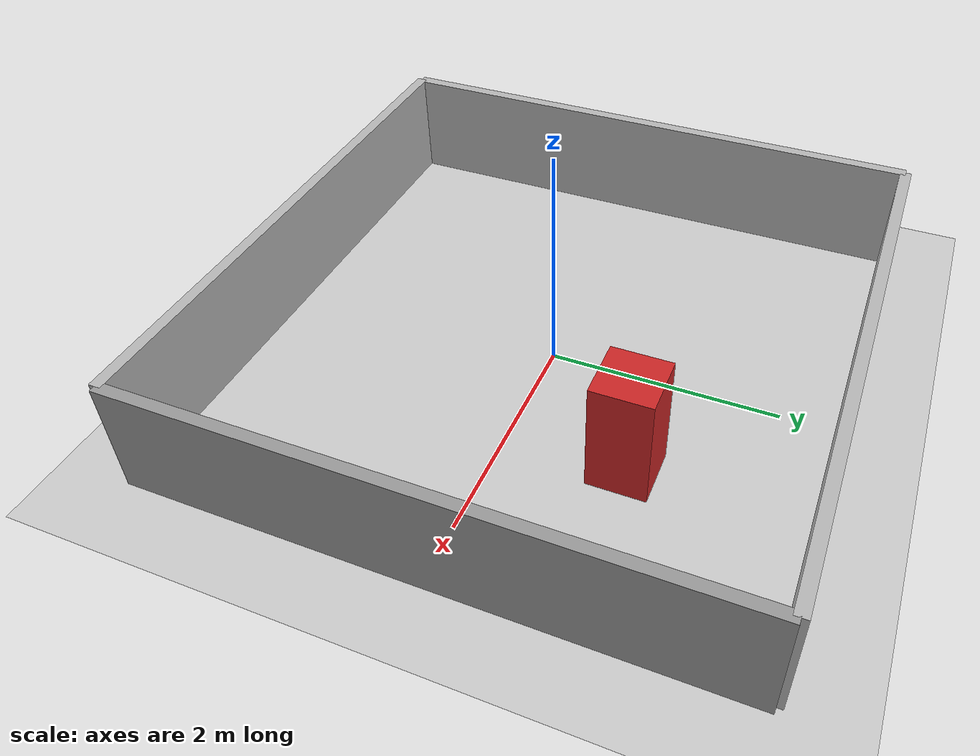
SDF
<?xml version="1.0" ?>
<sdf version="1.5">
  <world name="default">
    <include>
      <uri>model://sun</uri>
    </include>
    <include>
      <uri>model://ground_plane</uri>
    </include>

    <model name="wall_front">
      <static>true</static>
      <pose>2.5 0 0.5 0 0 0</pose>
      <link name="link">
        <collision name="collision">
          <geometry><box><size>0.1 5 1</size></box></geometry>
        </collision>
        <visual name="visual">
          <geometry><box><size>0.1 5 1</size></box></geometry>
          <material>
            <script><uri>file://media/materials/scripts/gazebo.material</uri><name>Gazebo/Grey</name></script>
          </material>
        </visual>
      </link>
    </model>

    <model name="wall_back">
      <static>true</static>
      <pose>-2.5 0 0.5 0 0 0</pose>
      <link name="link">
        <collision name="collision">
          <geometry><box><size>0.1 5 1</size></box></geometry>
        </collision>
        <visual name="visual">
          <geometry><box><size>0.1 5 1</size></box></geometry>
        </visual>
      </link>
    </model>

    <model name="wall_left">
      <static>true</static>
      <pose>0 2.5 0.5 0 0 0</pose>
      <link name="link">
        <collision name="collision">
          <geometry><box><size>5 0.1 1</size></box></geometry>
        </collision>
        <visual name="visual">
          <geometry><box><size>5 0.1 1</size></box></geometry>
        </visual>
      </link>
    </model>

    <model name="wall_right">
      <static>true</static>
      <pose>0 -2.5 0.5 0 0 0</pose>
      <link name="link">
        <collision name="collision">
          <geometry><box><size>5 0.1 1</size></box></geometry>
        </collision>
        <visual name="visual">
          <geometry><box><size>5 0.1 1</size></box></geometry>
        </visual>
      </link>
    </model>

    <model name="center_pillar">
      <static>true</static>
      <pose>1 1 0.5 0 0 0</pose>
      <link name="link">
        <collision name="collision">
          <geometry><box><size>0.5 0.5 1</size></box></geometry>
        </collision>
        <visual name="visual">
          <geometry><box><size>0.5 0.5 1</size></box></geometry>
          <material>
            <script><uri>file://media/materials/scripts/gazebo.material</uri><name>Gazebo/Red</name></script>
          </material>
        </visual>
      </link>
    </model>

  </world>
</sdf>
